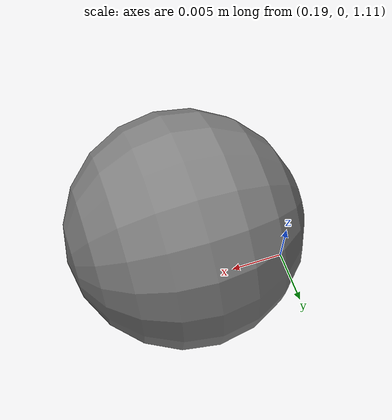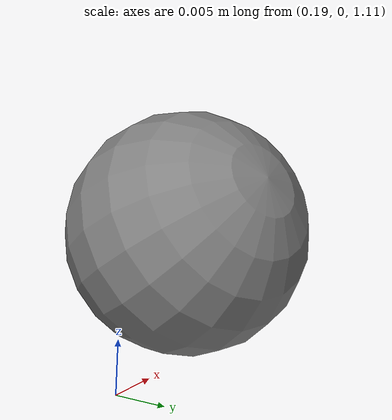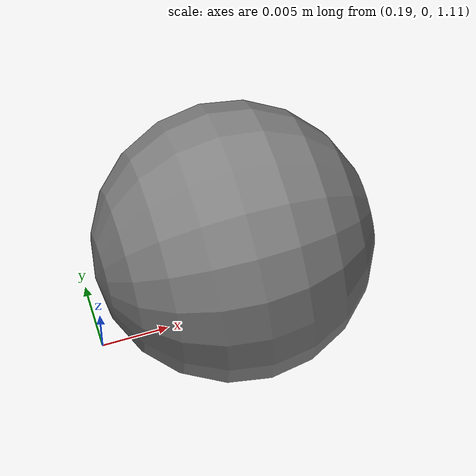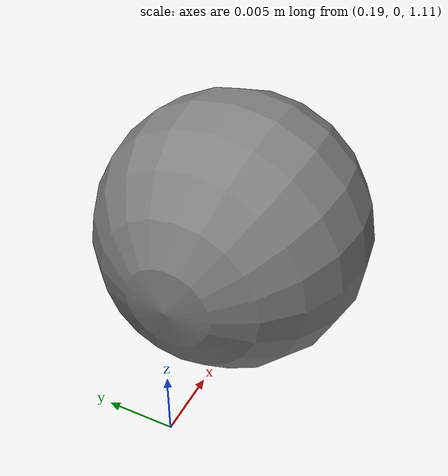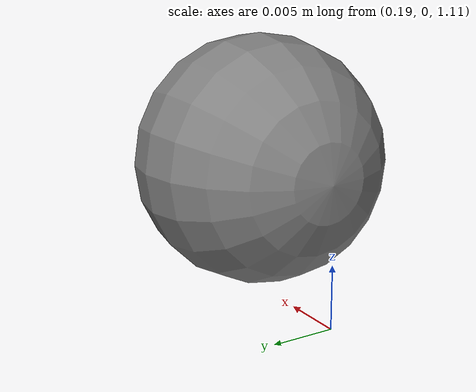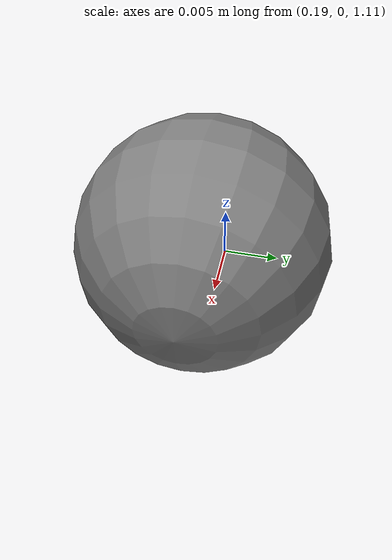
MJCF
<?xml version="1.0"?>
<!-- Robot limits pulled from https://frankaemika.github.io/docs/control_parameters.html#constants -->
<mujoco model="franka_desk">
  <compiler angle="radian"/>
  <size njmax="2000" nconmax="2000"/>
  <option timestep="0.002"/>
  <compiler angle="radian"/>
  <size nuser_actuator="5"/>
  <actuator>
    <position name="panda0_joint1" joint="panda0_joint1" class="panda" kp="870" forcerange="-87 87" ctrlrange="-2.9671 2.9671"/> <!-- velocity="2.1750" -->
    <position name="panda0_joint2" joint="panda0_joint2" class="panda" kp="870" forcerange="-87 87" ctrlrange="-1.8326 1.8326"/> <!-- velocity="2.1750" -->
    <position name="panda0_joint3" joint="panda0_joint3" class="panda" kp="870" forcerange="-87 87" ctrlrange="-2.9671 2.9671"/> <!-- velocity="2.1750" -->
    <position name="panda0_joint4" joint="panda0_joint4" class="panda" kp="870" forcerange="-87 87" ctrlrange="-3.1416 0.0"/> <!-- velocity="2.1750" -->
    <position name="panda0_joint5" joint="panda0_joint5" class="panda" kp="120" forcerange="-12 12" ctrlrange="-2.9671 2.9671"/> <!-- velocity="2.6100" -->
    <position name="panda0_joint6" joint="panda0_joint6" class="panda" kp="120" forcerange="-12 12" ctrlrange="-3.7525 2.1817"/> <!-- velocity="2.6100" -->
    <position name="panda0_joint7" joint="panda0_joint7" class="panda" kp="120" forcerange="-12 12" ctrlrange="-2.9671 2.9671"/> <!-- velocity="2.9671" -->
    <position name="r_gripper_finger_joint" joint="panda0_finger_joint1" class="panda_finger" kp="500" forcerange="-70 70" ctrlrange="0 0.04"/> <!-- velocity=".2" -->
    <position name="l_gripper_finger_joint" joint="panda0_finger_joint2" class="panda_finger" kp="500" forcerange="-70 70" ctrlrange="0 0.04"/> <!-- velocity=".2" -->
  </actuator>
  <asset>
    <!-- Franka meshes -->
    <mesh name="link0_col" file="meshes/franka/collision_link0.stl"/>
    <mesh name="link1_col" file="meshes/franka/collision_link1.stl"/>
    <mesh name="link2_col" file="meshes/franka/collision_link2.stl"/>
    <mesh name="link3_col" file="meshes/franka/collision_link3.stl"/>
    <mesh name="link4_col" file="meshes/franka/collision_link4.stl"/>
    <mesh name="link5_col" file="meshes/franka/collision_link5.stl"/>
    <mesh name="link6_col" file="meshes/franka/collision_link6.stl"/>
    <mesh name="link7_col" file="meshes/franka/collision_link7.stl"/>
    <mesh name="hand_col" file="meshes/franka/collision_hand.stl"/>
    <mesh name="finger_col" file="meshes/franka/collision_finger.stl" scale="1.75 1.0 1.75"/>
    <mesh name="link0_viz" file="meshes/franka/visual_link0.stl"/>
    <mesh name="link1_viz" file="meshes/franka/visual_link1.stl"/>
    <mesh name="link2_viz" file="meshes/franka/visual_link2.stl"/>
    <mesh name="link3_viz" file="meshes/franka/visual_link3.stl"/>
    <mesh name="link4_viz" file="meshes/franka/visual_link4.stl"/>
    <mesh name="link5_viz" file="meshes/franka/visual_link5.stl"/>
    <mesh name="link6_viz" file="meshes/franka/visual_link6.stl"/>
    <mesh name="link7_viz" file="meshes/franka/visual_link7.stl"/>
    <mesh name="hand_viz" file="meshes/franka/visual_hand.stl"/>
    <mesh name="finger_viz" file="meshes/franka/visual_finger.stl" scale="1.75 1.0 1.75"/>
  </asset>
  <default>
    <!-- Franka default classes -->
    <default class="panda">
      <joint pos="0 0 0" axis="0 0 1" limited="true"/>
      <position forcelimited="true" ctrllimited="true" user="1002 40 2001 -0.005 0.005"/>
      <default class="panda_viz">
        <geom contype="0" conaffinity="0" group="0" type="mesh" rgba=".95 .99 .92 1" mass="0"/>
      </default>
      <default class="panda_col">
        <geom contype="1" conaffinity="1" group="3" type="mesh" rgba=".5 .6 .7 1"/>
      </default>
      <default class="panda_arm">
        <joint damping="100"/>
      </default>
      <default class="panda_forearm">
        <joint damping="10"/>
      </default>
      <default class="panda_finger">
        <joint damping="100" armature="5"/>
        <geom friction="1 0.5 0.0001" solref="0.01 1" solimp="0.8 0.9 0.001" margin="0.001" user="0" rgba="0.5 0.6 0.7 .4" contype="1" conaffinity="0" condim="6" group="3"/>
        <position user="1002 40 2001 -0.0001 0.0001"/>
      </default>
    </default>
    <default class="panda_overlay">
      <joint limited="false" damping="1000" armature="1" frictionloss="10"/>
      <geom contype="0" conaffinity="0" group="2" type="mesh" rgba=".42 0.42 0.42 .5"/>
    </default>
  </default>

  <worldbody name="panda0_body" childclass="panda">
      <body name="panda0_link0" childclass="panda">
        <geom type="mesh" class="panda_col" mesh="link0_col" mass="2.91242"/>
        <body name="panda0_link1" pos="0 0 0.333">
          <joint limited="true" axis="0 0 1" type="hinge" name="panda0_joint1" range="-2.91 2.91" class="panda_arm"/>
          <geom type="mesh" class="panda_col" mesh="link1_col" mass="2.7063"/>
          <body name="panda0_link2" pos="0 0 0" quat="0.707107 -0.707107 0 0">
            <joint limited="true" axis="0 0 1" type="hinge" name="panda0_joint2" range="-1.77 1.77" class="panda_arm"/>
            <geom type="mesh" class="panda_col" mesh="link2_col" mass="2.73046"/>
            <body name="panda0_link3" pos="0 -0.316 0" quat="0.707107 0.707107 0 0">
              <joint limited="true" axis="0 0 1" type="hinge" name="panda0_joint3" range="-2.91 2.91" class="panda_arm"/>
              <geom type="mesh" class="panda_col" mesh="link3_col" mass="2.04104"/>
              <body name="panda0_link4" pos="0.0825 0 0" quat="0.707107 0.707107 0 0">
                <joint limited="true" axis="0 0 1" type="hinge" name="panda0_joint4" range="-3.08 -0.39" class="panda_arm"/>
                <geom type="mesh" class="panda_col" mesh="link4_col" mass="2.08129"/>
                <body name="panda0_link5" pos="-0.0825 0.384 0" quat="0.707107 -0.707107 0 0">
                  <joint limited="true" axis="0 0 1" type="hinge" name="panda0_joint5" range="-2.91 2.91" class="panda_forearm"/>
                  <geom type="mesh" class="panda_col" mesh="link5_col" mass="3.00049"/>
                  <body name="panda0_link6" pos="0 0 0" quat="0.5 0.5 -0.5 0.5">
                    <joint limited="true" axis="0 0 1" type="hinge" name="panda0_joint6" range="-1.67 2.12" class="panda_forearm"/>
                    <geom type="mesh" class="panda_col" mesh="link6_col" mass="1.3235"/>
                    <body name="panda0_link7" pos="0.088 0 0" quat="0.653 0.653 -0.27 0.27">
                      <joint limited="true" axis="0 0 1" type="hinge" name="panda0_joint7" range="-2.91 2.91" class="panda_forearm"/>
                      <geom type="mesh" class="panda_col" mesh="link7_col" mass="0.2"/>
                      <geom type="mesh" pos="0 0 0.107" quat="0.92388 0 0 -0.382683" class="panda_col" mesh="hand_col" mass="0.81909"/>
                      <body name="right_gripper" pos="0 0 0.200" quat="0.92388 0 0 -0.382683">
                        <geom type="sphere" name="end_effector_col" pos="0 0 0" size="0.01" quat="1 0 0 0"/>
                      </body>
                      <body name="panda0_leftfinger" pos="0 0 0.1654" quat="0.92388 0 0 -0.382683" childclass="panda_finger">
                        <inertial pos="-1.57863e-05 0.0118731 0.0434103" quat="0.705868 0.0310348 -0.0314925 0.706962" mass="0.0927059" diaginertia="6.57134e-05 6.09611e-05 1.09932e-05"/>
                        <joint limited="true" name="panda0_finger_joint1" axis="0 1 0" type="slide" range="0 0.04" class="panda_finger"/>
                        <geom size="0.0070" fromto=".009 .006 .0875   -.009 .009 .0875" type="capsule"/>
                        <geom size="0.0070" fromto=".009 .009 .0875   -.009 .006 .0875" type="capsule"/>
                        <geom size="0.0075" fromto=".009 .007 .0775   -.009 .010 .0775" type="capsule"/>
                        <geom size="0.0075" fromto=".009 .010 .0775   -.009 .007 .0775" type="capsule"/>
                        <geom size="0.0082" fromto=".009 .008 .0675   -.009 .011 .0675" type="capsule"/>
                        <geom size="0.0082" fromto=".009 .011 .0675   -.009 .008 .0675" type="capsule"/>
                        <geom size="0.0090" fromto=".009 .009 .0575   -.009 .012 .0575" type="capsule"/>
                        <geom size="0.0090" fromto=".009 .012 .0575   -.009 .009 .0575" type="capsule"/>
                        <geom size="0.0100" fromto=".009 .0105 .0475   -.009 .0135 .0475" type="capsule"/>
                        <geom size="0.0100" fromto=".009 .0135 .0475   -.009 .0105 .0475" type="capsule"/>
                        <geom size="0.0110" fromto=".009 .012 .035   -.009 .015 .035" type="capsule"/>
                        <geom size="0.0110" fromto=".009 .015 .035   -.009 .012 .035" type="capsule"/>
                        <geom size="0.0185 0.0120 0.0175" pos="0 0.014 0.015" type="box" euler=".03 0 0"/>
                      </body>
                      <body name="panda0_rightfinger" pos="0 0 0.1654" quat="0.92388 0 0 -0.382683" childclass="panda_finger">
                        <inertial pos="1.57863e-05 -0.0118731 0.0434103" quat="0.705868 -0.0310348 0.0314925 0.706962" mass="0.0927059" diaginertia="6.57134e-05 6.09611e-05 1.09932e-05"/>
                        <joint limited="true" name="panda0_finger_joint2" axis="0 -1 0" type="slide" range="0 0.04" class="panda_finger"/>
                        <geom size="0.0070" fromto=".009 -.006 .0875   -.009 -.009 .0875" type="capsule"/>
                        <geom size="0.0070" fromto=".009 -.009 .0875   -.009 -.006 .0875" type="capsule"/>
                        <geom size="0.0075" fromto=".009 -.007 .0775   -.009 -.010 .0775" type="capsule"/>
                        <geom size="0.0075" fromto=".009 -.010 .0775   -.009 -.007 .0775" type="capsule"/>
                        <geom size="0.0082" fromto=".009 -.008 .0675   -.009 -.011 .0675" type="capsule"/>
                        <geom size="0.0082" fromto=".009 -.011 .0675   -.009 -.008 .0675" type="capsule"/>
                        <geom size="0.0090" fromto=".009 -.009 .0575   -.009 -.012 .0575" type="capsule"/>
                        <geom size="0.0090" fromto=".009 -.012 .0575   -.009 -.009 .0575" type="capsule"/>
                        <geom size="0.0100" fromto=".009 -.0105 .0475   -.009 -.0135 .0475" type="capsule"/>
                        <geom size="0.0100" fromto=".009 -.0135 .0475   -.009 -.0105 .0475" type="capsule"/>
                        <geom size="0.0110" fromto=".009 -.012 .035   -.009 -.015 .035" type="capsule"/>
                        <geom size="0.0110" fromto=".009 -.015 .035   -.009 -.012 .035" type="capsule"/>
                        <geom size="0.0185 0.0120 0.0175" pos="0 -.014 0.015" type="box" euler="-.03 0 0"/>
                      </body>
                    </body>
                  </body>
                </body>
              </body>
            </body>
          </body>
        </body>
    </body>
  </worldbody>
</mujoco>
